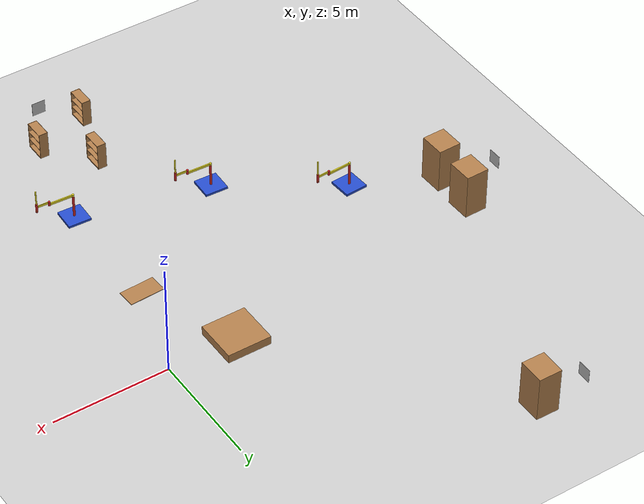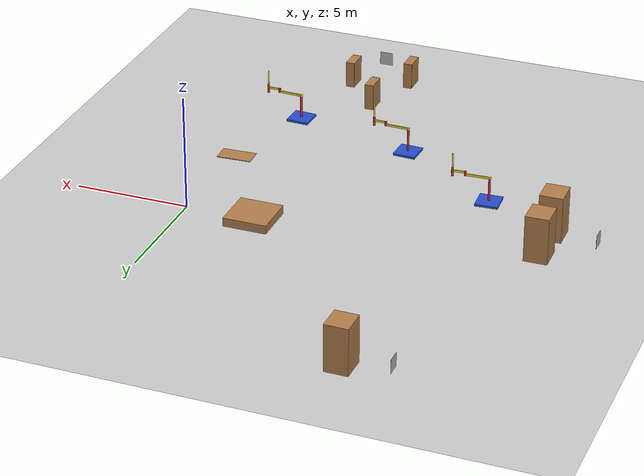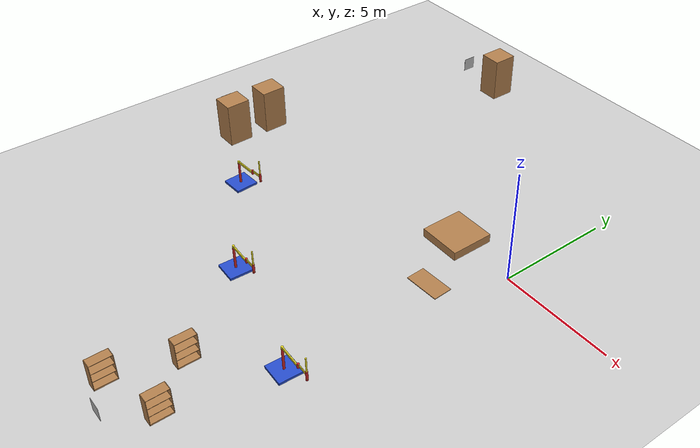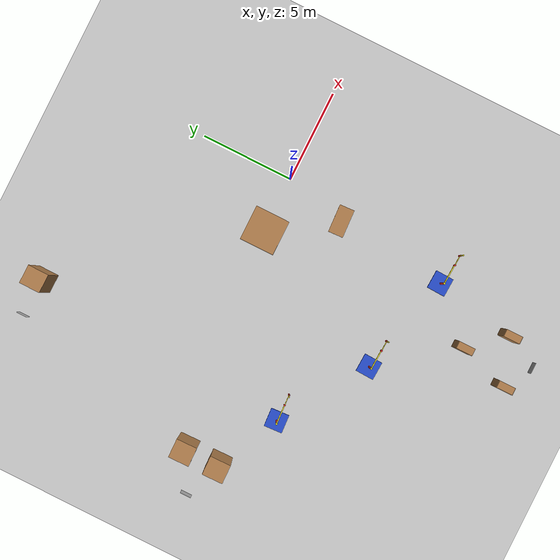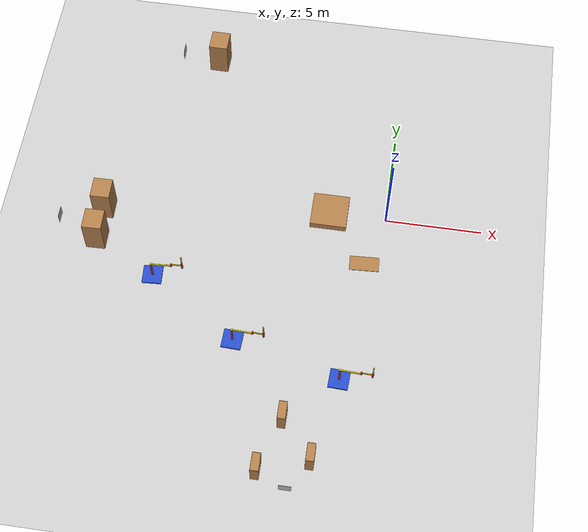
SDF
<sdf version="1.7">
 <world name="default">
  <model name="ground_plane">
   <static>1</static>
   <link name="link">
    <collision name="collision">
     <geometry><plane><normal>0 0 1</normal><size>25 25</size></plane></geometry>
     <surface><friction><ode><mu>100</mu><mu2>50</mu2></ode></friction></surface>
    </collision>
    <visual name="visual">
     <cast_shadows>0</cast_shadows>
     <geometry><plane><normal>0 0 1</normal><size>25 25</size></plane></geometry>
     <material>
      <script><uri>file://media/materials/scripts/gazebo.material</uri><name>Gazebo/Grey</name></script>
     </material>
    </visual>
   </link>
  </model>
  <model name="table">
   <static>0</static>
   <link name="link">
    <collision name="surface">
     <pose>0 0 1 0 -0 0</pose>
     <geometry><box><size>1.5 0.8 0.03</size></box></geometry>
     <surface><friction><ode><mu>0.6</mu><mu2>0.6</mu2></ode></friction></surface>
    </collision>
    <visual name="visual1">
     <pose>0 0 1 0 -0 0</pose>
     <geometry><box><size>1.5 0.8 0.03</size></box></geometry>
     <material>
      <script><uri>file://media/materials/scripts/gazebo.material</uri><name>Gazebo/Wood</name></script>
     </material>
    </visual>
    <inertial>
     <inertia><ixx>1</ixx><ixy>0</ixy><ixz>0</ixz><iyy>1</iyy><iyz>0</iyz><izz>1</izz></inertia>
     <mass>1</mass>
    </inertial>
   </link>
   <pose>-0.856033 -3.31018 -9e-06 -1e-06 1e-06 0.051046</pose>
  </model>
  <model name="unit_box_0">
   <pose>-2.99922 0.000684 0.193611 -0 -0 -0.000953</pose>
   <link name="link">
    <inertial>
     <mass>1</mass>
     <inertia>
      <ixx>0.166667</ixx>
      <ixy>0</ixy>
      <ixz>0</ixz>
      <iyy>0.166667</iyy>
      <iyz>0</iyz>
      <izz>0.166667</izz>
     </inertia>
    </inertial>
    <collision name="collision"><geometry><box><size>1.90824 1.89174 0.387223</size></box></geometry></collision>
    <visual name="visual">
     <geometry><box><size>1.90824 1.89174 0.387223</size></box></geometry>
     <material>
      <script><uri>file://media/materials/scripts/gazebo.material</uri><name>Gazebo/Wood</name></script>
     </material>
    </visual>
   </link>
   <static>0</static>
  </model>
  <model name="static_apriltag_5">
   <link name="link">
    <pose>0 0 0 -1.57 1.57 -0</pose>
    <inertial>
     <mass>0.39</mass>
     <inertia><ixx>0.00058</ixx><ixy>0</ixy><ixz>0</ixz><iyy>0.00058</iyy><iyz>0</iyz><izz>0.00019</izz></inertia>
    </inertial>
    <collision name="collision"><geometry><box><size>0.6 0.6 0.01</size></box></geometry></collision>
    <visual name="visual">
     <geometry><box><size>0.6 0.6 0.01</size></box></geometry>
     <material>
      <script>
       <uri>model://apriltag/materials/scripts</uri>
       <uri>model://apriltag/materials/textures</uri>
       <name>apriltag/Diffuse5</name>
      </script>
     </material>
    </visual>
    <gravity>0</gravity>
   </link>
   <pose>-3.19181 -15.4682 0.65103 0.000796 0.000796 1e-06</pose>
   <static>1</static>
   <pose>5.04082 3.71574 0 0 -0 0</pose>
  </model>
  <model name="static_apriltag_6">
   <link name="link">
    <pose>0 0 0 -1.57 1.57 -0</pose>
    <inertial>
     <mass>0.39</mass>
     <inertia><ixx>0.00058</ixx><ixy>0</ixy><ixz>0</ixz><iyy>0.00058</iyy><iyz>0</iyz><izz>0.00019</izz></inertia>
    </inertial>
    <collision name="collision"><geometry><box><size>0.6 0.6 0.01</size></box></geometry></collision>
    <visual name="visual">
     <geometry><box><size>0.6 0.6 0.01</size></box></geometry>
     <material>
      <script>
       <uri>model://apriltag/materials/scripts</uri>
       <uri>model://apriltag/materials/textures</uri>
       <name>apriltag/Diffuse6</name>
      </script>
     </material>
    </visual>
    <gravity>0</gravity>
   </link>
   <pose>-16.951 -2.45614 0.650971 -0.000796 0.000796 -1.57</pose>
   <static>1</static>
   <pose>3.43144 4.34187 0 0 -0 0</pose>
  </model>
  <model name="static_apriltag_7">
   <link name="link">
    <inertial>
     <mass>0.39</mass>
     <inertia><ixx>0.00058</ixx><ixy>0</ixy><ixz>0</ixz><iyy>0.00058</iyy><iyz>0</iyz><izz>0.00019</izz></inertia>
    </inertial>
    <collision name="collision"><geometry><box><size>0.6 0.6 0.01</size></box></geometry></collision>
    <visual name="visual">
     <geometry><box><size>0.6 0.6 0.01</size></box></geometry>
     <material>
      <script>
       <uri>model://apriltag/materials/scripts</uri>
       <uri>model://apriltag/materials/textures</uri>
       <name>apriltag/Diffuse7</name>
      </script>
     </material>
    </visual>
    <gravity>0</gravity>
   </link>
   <pose>-12.4494 9.17587 0.65 1.57 -0 1.57</pose>
   <static>1</static>
   <pose>3.12393 4.47604 0 0 -0 0</pose>
  </model>
  <model name="simple_arm">
   <link name="arm_base">
    <inertial>
     <pose>0 0 0.00099 0 -0 0</pose>
     <inertia><ixx>1.11</ixx><ixy>0</ixy><ixz>0</ixz><iyy>100.11</iyy><iyz>0</iyz><izz>1.01</izz></inertia>
     <mass>101</mass>
    </inertial>
    <collision name="arm_base_geom">
     <pose>0 0 0.05 0 -0 0</pose>
     <geometry><box><size>1 1 0.1</size></box></geometry>
    </collision>
    <visual name="arm_base_geom_visual">
     <pose>0 0 0.05 0 -0 0</pose>
     <geometry><box><size>1 1 0.1</size></box></geometry>
     <material>
      <script><uri>file://media/materials/scripts/gazebo.material</uri><name>Gazebo/Blue</name></script>
     </material>
    </visual>
    <collision name="arm_base_geom_arm_trunk">
     <pose>0 0 0.6 0 -0 0</pose>
     <geometry><cylinder><radius>0.05</radius><length>1</length></cylinder></geometry>
    </collision>
    <visual name="arm_base_geom_arm_trunk_visual">
     <pose>0 0 0.6 0 -0 0</pose>
     <geometry><cylinder><radius>0.05</radius><length>1</length></cylinder></geometry>
     <material>
      <script><uri>file://media/materials/scripts/gazebo.material</uri><name>Gazebo/Red</name></script>
     </material>
    </visual>
   </link>
   <link name="arm_shoulder_pan">
    <pose>0 0 1.1 0 -0 0</pose>
    <inertial>
     <pose>0.045455 0 0 0 -0 0</pose>
     <inertia><ixx>0.011</ixx><ixy>0</ixy><ixz>0</ixz><iyy>0.0225</iyy><iyz>0</iyz><izz>0.0135</izz></inertia>
     <mass>1.1</mass>
    </inertial>
    <collision name="arm_shoulder_pan_geom">
     <pose>0 0 0.05 0 -0 0</pose>
     <geometry><cylinder><radius>0.05</radius><length>0.1</length></cylinder></geometry>
    </collision>
    <visual name="arm_shoulder_pan_geom_visual">
     <pose>0 0 0.05 0 -0 0</pose>
     <geometry><cylinder><radius>0.05</radius><length>0.1</length></cylinder></geometry>
     <material>
      <script><uri>file://media/materials/scripts/gazebo.material</uri><name>Gazebo/Yellow</name></script>
     </material>
    </visual>
    <collision name="arm_shoulder_pan_geom_arm_shoulder">
     <pose>0.55 0 0.05 0 -0 0</pose>
     <geometry><box><size>1 0.05 0.1</size></box></geometry>
    </collision>
    <visual name="arm_shoulder_pan_geom_arm_shoulder_visual">
     <pose>0.55 0 0.05 0 -0 0</pose>
     <geometry><box><size>1 0.05 0.1</size></box></geometry>
     <material>
      <script><uri>file://media/materials/scripts/gazebo.material</uri><name>Gazebo/Yellow</name></script>
     </material>
    </visual>
   </link>
   <link name="arm_elbow_pan">
    <pose>1.05 0 1.1 0 -0 0</pose>
    <inertial>
     <pose>0.0875 0 0.083333 0 -0 0</pose>
     <inertia>
      <ixx>0.031</ixx>
      <ixy>0</ixy>
      <ixz>0.005</ixz>
      <iyy>0.07275</iyy>
      <iyz>0</iyz>
      <izz>0.04475</izz>
     </inertia>
     <mass>1.2</mass>
    </inertial>
    <collision name="arm_elbow_pan_geom">
     <pose>0 0 0.1 0 -0 0</pose>
     <geometry><cylinder><radius>0.05</radius><length>0.2</length></cylinder></geometry>
    </collision>
    <visual name="arm_elbow_pan_geom_visual">
     <pose>0 0 0.1 0 -0 0</pose>
     <geometry><cylinder><radius>0.05</radius><length>0.2</length></cylinder></geometry>
     <material>
      <script><uri>file://media/materials/scripts/gazebo.material</uri><name>Gazebo/Red</name></script>
     </material>
    </visual>
    <collision name="arm_elbow_pan_geom_arm_elbow">
     <pose>0.3 0 0.15 0 -0 0</pose>
     <geometry><box><size>0.5 0.03 0.1</size></box></geometry>
    </collision>
    <visual name="arm_elbow_pan_geom_arm_elbow_visual">
     <pose>0.3 0 0.15 0 -0 0</pose>
     <geometry><box><size>0.5 0.03 0.1</size></box></geometry>
     <material>
      <script><uri>file://media/materials/scripts/gazebo.material</uri><name>Gazebo/Yellow</name></script>
     </material>
    </visual>
    <collision name="arm_elbow_pan_geom_arm_wrist">
     <pose>0.55 0 0.15 0 -0 0</pose>
     <geometry><cylinder><radius>0.05</radius><length>0.3</length></cylinder></geometry>
    </collision>
    <visual name="arm_elbow_pan_geom_arm_wrist_visual">
     <pose>0.55 0 0.15 0 -0 0</pose>
     <geometry><cylinder><radius>0.05</radius><length>0.3</length></cylinder></geometry>
     <material>
      <script><uri>file://media/materials/scripts/gazebo.material</uri><name>Gazebo/Red</name></script>
     </material>
    </visual>
   </link>
   <link name="arm_wrist_lift">
    <pose>1.6 0 1.05 0 -0 0</pose>
    <inertial>
     <inertia><ixx>0.01</ixx><ixy>0</ixy><ixz>0</ixz><iyy>0.01</iyy><iyz>0</iyz><izz>0.001</izz></inertia>
     <mass>0.1</mass>
    </inertial>
    <collision name="arm_wrist_lift_geom">
     <pose>0 0 0.5 0 -0 0</pose>
     <geometry><cylinder><radius>0.03</radius><length>1</length></cylinder></geometry>
    </collision>
    <visual name="arm_wrist_lift_geom_visual">
     <pose>0 0 0.5 0 -0 0</pose>
     <geometry><cylinder><radius>0.03</radius><length>1</length></cylinder></geometry>
     <material>
      <script><uri>file://media/materials/scripts/gazebo.material</uri><name>Gazebo/Yellow</name></script>
     </material>
    </visual>
   </link>
   <link name="arm_wrist_roll">
    <pose>1.6 0 1 0 -0 0</pose>
    <inertial>
     <inertia><ixx>0.01</ixx><ixy>0</ixy><ixz>0</ixz><iyy>0.01</iyy><iyz>0</iyz><izz>0.001</izz></inertia>
     <mass>0.1</mass>
    </inertial>
    <collision name="arm_wrist_roll_geom">
     <pose>0 0 0.025 0 -0 0</pose>
     <geometry><cylinder><radius>0.05</radius><length>0.05</length></cylinder></geometry>
    </collision>
    <visual name="arm_wrist_roll_geom_visual">
     <pose>0 0 0.025 0 -0 0</pose>
     <geometry><cylinder><radius>0.05</radius><length>0.05</length></cylinder></geometry>
     <material>
      <script><uri>file://media/materials/scripts/gazebo.material</uri><name>Gazebo/Red</name></script>
     </material>
    </visual>
   </link>
   <joint name="arm_shoulder_pan_joint" type="revolute">
    <parent>arm_base</parent>
    <child>arm_shoulder_pan</child>
    <axis>
     <dynamics>
      <damping>1</damping>
      <friction>0</friction>
      <spring_reference>0</spring_reference>
      <spring_stiffness>0</spring_stiffness>
     </dynamics>
     <xyz expressed_in="__model__">0 0 1</xyz>
     <limit><lower>-1e+16</lower><upper>1e+16</upper></limit>
    </axis>
   </joint>
   <joint name="arm_elbow_pan_joint" type="revolute">
    <parent>arm_shoulder_pan</parent>
    <child>arm_elbow_pan</child>
    <axis>
     <dynamics>
      <damping>1</damping>
      <friction>0</friction>
      <spring_reference>0</spring_reference>
      <spring_stiffness>0</spring_stiffness>
     </dynamics>
     <xyz expressed_in="__model__">0 0 1</xyz>
     <limit><lower>-1e+16</lower><upper>1e+16</upper></limit>
    </axis>
   </joint>
   <joint name="arm_wrist_lift_joint" type="prismatic">
    <parent>arm_elbow_pan</parent>
    <child>arm_wrist_lift</child>
    <axis>
     <dynamics>
      <damping>1</damping>
      <friction>0</friction>
      <spring_reference>0</spring_reference>
      <spring_stiffness>0</spring_stiffness>
     </dynamics>
     <limit><lower>-0.8</lower><upper>0.1</upper></limit>
     <xyz expressed_in="__model__">0 0 1</xyz>
    </axis>
   </joint>
   <joint name="arm_wrist_roll_joint" type="revolute">
    <parent>arm_wrist_lift</parent>
    <child>arm_wrist_roll</child>
    <axis>
     <dynamics>
      <damping>1</damping>
      <friction>0</friction>
      <spring_reference>0</spring_reference>
      <spring_stiffness>0</spring_stiffness>
     </dynamics>
     <limit><lower>-2.99999</lower><upper>2.99999</upper></limit>
     <xyz expressed_in="__model__">0 0 1</xyz>
    </axis>
   </joint>
   <pose>-11.5719 -4.97908 -5.6e-05 0.000114 -2e-06 0.060272</pose>
  </model>
  <model name="simple_arm_clone">
   <link name="arm_base">
    <inertial>
     <pose>0 0 0.00099 0 -0 0</pose>
     <inertia><ixx>1.11</ixx><ixy>0</ixy><ixz>0</ixz><iyy>100.11</iyy><iyz>0</iyz><izz>1.01</izz></inertia>
     <mass>101</mass>
    </inertial>
    <collision name="arm_base_geom">
     <pose>0 0 0.05 0 -0 0</pose>
     <geometry><box><size>1 1 0.1</size></box></geometry>
    </collision>
    <visual name="arm_base_geom_visual">
     <pose>0 0 0.05 0 -0 0</pose>
     <geometry><box><size>1 1 0.1</size></box></geometry>
     <material>
      <script><uri>file://media/materials/scripts/gazebo.material</uri><name>Gazebo/Blue</name></script>
     </material>
    </visual>
    <collision name="arm_base_geom_arm_trunk">
     <pose>0 0 0.6 0 -0 0</pose>
     <geometry><cylinder><radius>0.05</radius><length>1</length></cylinder></geometry>
    </collision>
    <visual name="arm_base_geom_arm_trunk_visual">
     <pose>0 0 0.6 0 -0 0</pose>
     <geometry><cylinder><radius>0.05</radius><length>1</length></cylinder></geometry>
     <material>
      <script><uri>file://media/materials/scripts/gazebo.material</uri><name>Gazebo/Red</name></script>
     </material>
    </visual>
   </link>
   <link name="arm_shoulder_pan">
    <pose>0 0 1.1 0 -0 0</pose>
    <inertial>
     <pose>0.045455 0 0 0 -0 0</pose>
     <inertia><ixx>0.011</ixx><ixy>0</ixy><ixz>0</ixz><iyy>0.0225</iyy><iyz>0</iyz><izz>0.0135</izz></inertia>
     <mass>1.1</mass>
    </inertial>
    <collision name="arm_shoulder_pan_geom">
     <pose>0 0 0.05 0 -0 0</pose>
     <geometry><cylinder><radius>0.05</radius><length>0.1</length></cylinder></geometry>
    </collision>
    <visual name="arm_shoulder_pan_geom_visual">
     <pose>0 0 0.05 0 -0 0</pose>
     <geometry><cylinder><radius>0.05</radius><length>0.1</length></cylinder></geometry>
     <material>
      <script><uri>file://media/materials/scripts/gazebo.material</uri><name>Gazebo/Yellow</name></script>
     </material>
    </visual>
    <collision name="arm_shoulder_pan_geom_arm_shoulder">
     <pose>0.55 0 0.05 0 -0 0</pose>
     <geometry><box><size>1 0.05 0.1</size></box></geometry>
    </collision>
    <visual name="arm_shoulder_pan_geom_arm_shoulder_visual">
     <pose>0.55 0 0.05 0 -0 0</pose>
     <geometry><box><size>1 0.05 0.1</size></box></geometry>
     <material>
      <script><uri>file://media/materials/scripts/gazebo.material</uri><name>Gazebo/Yellow</name></script>
     </material>
    </visual>
   </link>
   <link name="arm_elbow_pan">
    <pose>1.05 0 1.1 0 -0 0</pose>
    <inertial>
     <pose>0.0875 0 0.083333 0 -0 0</pose>
     <inertia>
      <ixx>0.031</ixx>
      <ixy>0</ixy>
      <ixz>0.005</ixz>
      <iyy>0.07275</iyy>
      <iyz>0</iyz>
      <izz>0.04475</izz>
     </inertia>
     <mass>1.2</mass>
    </inertial>
    <collision name="arm_elbow_pan_geom">
     <pose>0 0 0.1 0 -0 0</pose>
     <geometry><cylinder><radius>0.05</radius><length>0.2</length></cylinder></geometry>
    </collision>
    <visual name="arm_elbow_pan_geom_visual">
     <pose>0 0 0.1 0 -0 0</pose>
     <geometry><cylinder><radius>0.05</radius><length>0.2</length></cylinder></geometry>
     <material>
      <script><uri>file://media/materials/scripts/gazebo.material</uri><name>Gazebo/Red</name></script>
     </material>
    </visual>
    <collision name="arm_elbow_pan_geom_arm_elbow">
     <pose>0.3 0 0.15 0 -0 0</pose>
     <geometry><box><size>0.5 0.03 0.1</size></box></geometry>
    </collision>
    <visual name="arm_elbow_pan_geom_arm_elbow_visual">
     <pose>0.3 0 0.15 0 -0 0</pose>
     <geometry><box><size>0.5 0.03 0.1</size></box></geometry>
     <material>
      <script><uri>file://media/materials/scripts/gazebo.material</uri><name>Gazebo/Yellow</name></script>
     </material>
    </visual>
    <collision name="arm_elbow_pan_geom_arm_wrist">
     <pose>0.55 0 0.15 0 -0 0</pose>
     <geometry><cylinder><radius>0.05</radius><length>0.3</length></cylinder></geometry>
    </collision>
    <visual name="arm_elbow_pan_geom_arm_wrist_visual">
     <pose>0.55 0 0.15 0 -0 0</pose>
     <geometry><cylinder><radius>0.05</radius><length>0.3</length></cylinder></geometry>
     <material>
      <script><uri>file://media/materials/scripts/gazebo.material</uri><name>Gazebo/Red</name></script>
     </material>
    </visual>
   </link>
   <link name="arm_wrist_lift">
    <pose>1.6 0 1.05 0 -0 0</pose>
    <inertial>
     <inertia><ixx>0.01</ixx><ixy>0</ixy><ixz>0</ixz><iyy>0.01</iyy><iyz>0</iyz><izz>0.001</izz></inertia>
     <mass>0.1</mass>
    </inertial>
    <collision name="arm_wrist_lift_geom">
     <pose>0 0 0.5 0 -0 0</pose>
     <geometry><cylinder><radius>0.03</radius><length>1</length></cylinder></geometry>
    </collision>
    <visual name="arm_wrist_lift_geom_visual">
     <pose>0 0 0.5 0 -0 0</pose>
     <geometry><cylinder><radius>0.03</radius><length>1</length></cylinder></geometry>
     <material>
      <script><uri>file://media/materials/scripts/gazebo.material</uri><name>Gazebo/Yellow</name></script>
     </material>
    </visual>
   </link>
   <link name="arm_wrist_roll">
    <pose>1.6 0 1 0 -0 0</pose>
    <inertial>
     <inertia><ixx>0.01</ixx><ixy>0</ixy><ixz>0</ixz><iyy>0.01</iyy><iyz>0</iyz><izz>0.001</izz></inertia>
     <mass>0.1</mass>
    </inertial>
    <collision name="arm_wrist_roll_geom">
     <pose>0 0 0.025 0 -0 0</pose>
     <geometry><cylinder><radius>0.05</radius><length>0.05</length></cylinder></geometry>
    </collision>
    <visual name="arm_wrist_roll_geom_visual">
     <pose>0 0 0.025 0 -0 0</pose>
     <geometry><cylinder><radius>0.05</radius><length>0.05</length></cylinder></geometry>
     <material>
      <script><uri>file://media/materials/scripts/gazebo.material</uri><name>Gazebo/Red</name></script>
     </material>
    </visual>
   </link>
   <joint name="arm_shoulder_pan_joint" type="revolute">
    <parent>arm_base</parent>
    <child>arm_shoulder_pan</child>
    <axis>
     <dynamics>
      <damping>1</damping>
      <friction>0</friction>
      <spring_reference>0</spring_reference>
      <spring_stiffness>0</spring_stiffness>
     </dynamics>
     <xyz expressed_in="__model__">0 0 1</xyz>
     <limit><lower>-1e+16</lower><upper>1e+16</upper></limit>
    </axis>
   </joint>
   <joint name="arm_elbow_pan_joint" type="revolute">
    <parent>arm_shoulder_pan</parent>
    <child>arm_elbow_pan</child>
    <axis>
     <dynamics>
      <damping>1</damping>
      <friction>0</friction>
      <spring_reference>0</spring_reference>
      <spring_stiffness>0</spring_stiffness>
     </dynamics>
     <xyz expressed_in="__model__">0 0 1</xyz>
     <limit><lower>-1e+16</lower><upper>1e+16</upper></limit>
    </axis>
   </joint>
   <joint name="arm_wrist_lift_joint" type="prismatic">
    <parent>arm_elbow_pan</parent>
    <child>arm_wrist_lift</child>
    <axis>
     <dynamics>
      <damping>1</damping>
      <friction>0</friction>
      <spring_reference>0</spring_reference>
      <spring_stiffness>0</spring_stiffness>
     </dynamics>
     <limit><lower>-0.8</lower><upper>0.1</upper></limit>
     <xyz expressed_in="__model__">0 0 1</xyz>
    </axis>
   </joint>
   <joint name="arm_wrist_roll_joint" type="revolute">
    <parent>arm_wrist_lift</parent>
    <child>arm_wrist_roll</child>
    <axis>
     <dynamics>
      <damping>1</damping>
      <friction>0</friction>
      <spring_reference>0</spring_reference>
      <spring_stiffness>0</spring_stiffness>
     </dynamics>
     <limit><lower>-2.99999</lower><upper>2.99999</upper></limit>
     <xyz expressed_in="__model__">0 0 1</xyz>
    </axis>
   </joint>
   <pose>-6.90545 -8.02942 -0 0 0 -0.043231</pose>
  </model>
  <model name="simple_arm_clone_0">
   <link name="arm_base">
    <inertial>
     <pose>0 0 0.00099 0 -0 0</pose>
     <inertia><ixx>1.11</ixx><ixy>0</ixy><ixz>0</ixz><iyy>100.11</iyy><iyz>0</iyz><izz>1.01</izz></inertia>
     <mass>101</mass>
    </inertial>
    <collision name="arm_base_geom">
     <pose>0 0 0.05 0 -0 0</pose>
     <geometry><box><size>1 1 0.1</size></box></geometry>
    </collision>
    <visual name="arm_base_geom_visual">
     <pose>0 0 0.05 0 -0 0</pose>
     <geometry><box><size>1 1 0.1</size></box></geometry>
     <material>
      <script><uri>file://media/materials/scripts/gazebo.material</uri><name>Gazebo/Blue</name></script>
     </material>
    </visual>
    <collision name="arm_base_geom_arm_trunk">
     <pose>0 0 0.6 0 -0 0</pose>
     <geometry><cylinder><radius>0.05</radius><length>1</length></cylinder></geometry>
    </collision>
    <visual name="arm_base_geom_arm_trunk_visual">
     <pose>0 0 0.6 0 -0 0</pose>
     <geometry><cylinder><radius>0.05</radius><length>1</length></cylinder></geometry>
     <material>
      <script><uri>file://media/materials/scripts/gazebo.material</uri><name>Gazebo/Red</name></script>
     </material>
    </visual>
   </link>
   <link name="arm_shoulder_pan">
    <pose>0 0 1.1 0 -0 0</pose>
    <inertial>
     <pose>0.045455 0 0 0 -0 0</pose>
     <inertia><ixx>0.011</ixx><ixy>0</ixy><ixz>0</ixz><iyy>0.0225</iyy><iyz>0</iyz><izz>0.0135</izz></inertia>
     <mass>1.1</mass>
    </inertial>
    <collision name="arm_shoulder_pan_geom">
     <pose>0 0 0.05 0 -0 0</pose>
     <geometry><cylinder><radius>0.05</radius><length>0.1</length></cylinder></geometry>
    </collision>
    <visual name="arm_shoulder_pan_geom_visual">
     <pose>0 0 0.05 0 -0 0</pose>
     <geometry><cylinder><radius>0.05</radius><length>0.1</length></cylinder></geometry>
     <material>
      <script><uri>file://media/materials/scripts/gazebo.material</uri><name>Gazebo/Yellow</name></script>
     </material>
    </visual>
    <collision name="arm_shoulder_pan_geom_arm_shoulder">
     <pose>0.55 0 0.05 0 -0 0</pose>
     <geometry><box><size>1 0.05 0.1</size></box></geometry>
    </collision>
    <visual name="arm_shoulder_pan_geom_arm_shoulder_visual">
     <pose>0.55 0 0.05 0 -0 0</pose>
     <geometry><box><size>1 0.05 0.1</size></box></geometry>
     <material>
      <script><uri>file://media/materials/scripts/gazebo.material</uri><name>Gazebo/Yellow</name></script>
     </material>
    </visual>
   </link>
   <link name="arm_elbow_pan">
    <pose>1.05 0 1.1 0 -0 0</pose>
    <inertial>
     <pose>0.0875 0 0.083333 0 -0 0</pose>
     <inertia>
      <ixx>0.031</ixx>
      <ixy>0</ixy>
      <ixz>0.005</ixz>
      <iyy>0.07275</iyy>
      <iyz>0</iyz>
      <izz>0.04475</izz>
     </inertia>
     <mass>1.2</mass>
    </inertial>
    <collision name="arm_elbow_pan_geom">
     <pose>0 0 0.1 0 -0 0</pose>
     <geometry><cylinder><radius>0.05</radius><length>0.2</length></cylinder></geometry>
    </collision>
    <visual name="arm_elbow_pan_geom_visual">
     <pose>0 0 0.1 0 -0 0</pose>
     <geometry><cylinder><radius>0.05</radius><length>0.2</length></cylinder></geometry>
     <material>
      <script><uri>file://media/materials/scripts/gazebo.material</uri><name>Gazebo/Red</name></script>
     </material>
    </visual>
    <collision name="arm_elbow_pan_geom_arm_elbow">
     <pose>0.3 0 0.15 0 -0 0</pose>
     <geometry><box><size>0.5 0.03 0.1</size></box></geometry>
    </collision>
    <visual name="arm_elbow_pan_geom_arm_elbow_visual">
     <pose>0.3 0 0.15 0 -0 0</pose>
     <geometry><box><size>0.5 0.03 0.1</size></box></geometry>
     <material>
      <script><uri>file://media/materials/scripts/gazebo.material</uri><name>Gazebo/Yellow</name></script>
     </material>
    </visual>
    <collision name="arm_elbow_pan_geom_arm_wrist">
     <pose>0.55 0 0.15 0 -0 0</pose>
     <geometry><cylinder><radius>0.05</radius><length>0.3</length></cylinder></geometry>
    </collision>
    <visual name="arm_elbow_pan_geom_arm_wrist_visual">
     <pose>0.55 0 0.15 0 -0 0</pose>
     <geometry><cylinder><radius>0.05</radius><length>0.3</length></cylinder></geometry>
     <material>
      <script><uri>file://media/materials/scripts/gazebo.material</uri><name>Gazebo/Red</name></script>
     </material>
    </visual>
   </link>
   <link name="arm_wrist_lift">
    <pose>1.6 0 1.05 0 -0 0</pose>
    <inertial>
     <inertia><ixx>0.01</ixx><ixy>0</ixy><ixz>0</ixz><iyy>0.01</iyy><iyz>0</iyz><izz>0.001</izz></inertia>
     <mass>0.1</mass>
    </inertial>
    <collision name="arm_wrist_lift_geom">
     <pose>0 0 0.5 0 -0 0</pose>
     <geometry><cylinder><radius>0.03</radius><length>1</length></cylinder></geometry>
    </collision>
    <visual name="arm_wrist_lift_geom_visual">
     <pose>0 0 0.5 0 -0 0</pose>
     <geometry><cylinder><radius>0.03</radius><length>1</length></cylinder></geometry>
     <material>
      <script><uri>file://media/materials/scripts/gazebo.material</uri><name>Gazebo/Yellow</name></script>
     </material>
    </visual>
   </link>
   <link name="arm_wrist_roll">
    <pose>1.6 0 1 0 -0 0</pose>
    <inertial>
     <inertia><ixx>0.01</ixx><ixy>0</ixy><ixz>0</ixz><iyy>0.01</iyy><iyz>0</iyz><izz>0.001</izz></inertia>
     <mass>0.1</mass>
    </inertial>
    <collision name="arm_wrist_roll_geom">
     <pose>0 0 0.025 0 -0 0</pose>
     <geometry><cylinder><radius>0.05</radius><length>0.05</length></cylinder></geometry>
    </collision>
    <visual name="arm_wrist_roll_geom_visual">
     <pose>0 0 0.025 0 -0 0</pose>
     <geometry><cylinder><radius>0.05</radius><length>0.05</length></cylinder></geometry>
     <material>
      <script><uri>file://media/materials/scripts/gazebo.material</uri><name>Gazebo/Red</name></script>
     </material>
    </visual>
   </link>
   <joint name="arm_shoulder_pan_joint" type="revolute">
    <parent>arm_base</parent>
    <child>arm_shoulder_pan</child>
    <axis>
     <dynamics>
      <damping>1</damping>
      <friction>0</friction>
      <spring_reference>0</spring_reference>
      <spring_stiffness>0</spring_stiffness>
     </dynamics>
     <xyz expressed_in="__model__">0 0 1</xyz>
     <limit><lower>-1e+16</lower><upper>1e+16</upper></limit>
    </axis>
   </joint>
   <joint name="arm_elbow_pan_joint" type="revolute">
    <parent>arm_shoulder_pan</parent>
    <child>arm_elbow_pan</child>
    <axis>
     <dynamics>
      <damping>1</damping>
      <friction>0</friction>
      <spring_reference>0</spring_reference>
      <spring_stiffness>0</spring_stiffness>
     </dynamics>
     <xyz expressed_in="__model__">0 0 1</xyz>
     <limit><lower>-1e+16</lower><upper>1e+16</upper></limit>
    </axis>
   </joint>
   <joint name="arm_wrist_lift_joint" type="prismatic">
    <parent>arm_elbow_pan</parent>
    <child>arm_wrist_lift</child>
    <axis>
     <dynamics>
      <damping>1</damping>
      <friction>0</friction>
      <spring_reference>0</spring_reference>
      <spring_stiffness>0</spring_stiffness>
     </dynamics>
     <limit><lower>-0.8</lower><upper>0.1</upper></limit>
     <xyz expressed_in="__model__">0 0 1</xyz>
    </axis>
   </joint>
   <joint name="arm_wrist_roll_joint" type="revolute">
    <parent>arm_wrist_lift</parent>
    <child>arm_wrist_roll</child>
    <axis>
     <dynamics>
      <damping>1</damping>
      <friction>0</friction>
      <spring_reference>0</spring_reference>
      <spring_stiffness>0</spring_stiffness>
     </dynamics>
     <limit><lower>-2.99999</lower><upper>2.99999</upper></limit>
     <xyz expressed_in="__model__">0 0 1</xyz>
    </axis>
   </joint>
   <pose>-1.36148 -9.4112 -0 0 0 -0.043231</pose>
  </model>
  <model name="bookshelf_clone">
   <static>1</static>
   <link name="link">
    <inertial><mass>1</mass></inertial>
    <collision name="back">
     <pose>0 0.005 0.6 0 -0 0</pose>
     <geometry><box><size>0.9 0.01 1.2</size></box></geometry>
    </collision>
    <visual name="visual1">
     <pose>0 0.005 0.6 0 -0 0</pose>
     <geometry><box><size>0.9 0.01 1.2</size></box></geometry>
     <material>
      <script><uri>file://media/materials/scripts/gazebo.material</uri><name>Gazebo/Wood</name></script>
     </material>
    </visual>
    <collision name="left_side">
     <pose>0.45 -0.195 0.6 0 -0 0</pose>
     <geometry><box><size>0.02 0.4 1.2</size></box></geometry>
    </collision>
    <visual name="visual2">
     <pose>0.45 -0.195 0.6 0 -0 0</pose>
     <geometry><box><size>0.02 0.4 1.2</size></box></geometry>
     <material>
      <script><uri>file://media/materials/scripts/gazebo.material</uri><name>Gazebo/Wood</name></script>
     </material>
    </visual>
    <collision name="right_side">
     <pose>-0.45 -0.195 0.6 0 -0 0</pose>
     <geometry><box><size>0.02 0.4 1.2</size></box></geometry>
    </collision>
    <visual name="visual3">
     <pose>-0.45 -0.195 0.6 0 -0 0</pose>
     <geometry><box><size>0.02 0.4 1.2</size></box></geometry>
     <material>
      <script><uri>file://media/materials/scripts/gazebo.material</uri><name>Gazebo/Wood</name></script>
     </material>
    </visual>
    <collision name="bottom">
     <pose>0 -0.195 0.03 0 -0 0</pose>
     <geometry><box><size>0.88 0.4 0.06</size></box></geometry>
    </collision>
    <visual name="visual4">
     <pose>0 -0.195 0.03 0 -0 0</pose>
     <geometry><box><size>0.88 0.4 0.06</size></box></geometry>
     <material>
      <script><uri>file://media/materials/scripts/gazebo.material</uri><name>Gazebo/Wood</name></script>
     </material>
    </visual>
    <collision name="top">
     <pose>0 -0.195 1.19 0 -0 0</pose>
     <geometry><box><size>0.88 0.4 0.02</size></box></geometry>
    </collision>
    <visual name="visual5">
     <pose>0 -0.195 1.19 0 -0 0</pose>
     <geometry><box><size>0.88 0.4 0.02</size></box></geometry>
     <material>
      <script><uri>file://media/materials/scripts/gazebo.material</uri><name>Gazebo/Wood</name></script>
     </material>
    </visual>
    <collision name="low_shelf">
     <pose>0 -0.195 0.43 0 -0 0</pose>
     <geometry><box><size>0.88 0.4 0.02</size></box></geometry>
    </collision>
    <visual name="visual6">
     <pose>0 -0.195 0.43 0 -0 0</pose>
     <geometry><box><size>0.88 0.4 0.02</size></box></geometry>
     <material>
      <script><uri>file://media/materials/scripts/gazebo.material</uri><name>Gazebo/Wood</name></script>
     </material>
    </visual>
    <collision name="high_shelf">
     <pose>0 -0.195 0.8 0 -0 0</pose>
     <geometry><box><size>0.88 0.4 0.02</size></box></geometry>
    </collision>
    <visual name="visual7">
     <pose>0 -0.195 0.8 0 -0 0</pose>
     <geometry><box><size>0.88 0.4 0.02</size></box></geometry>
     <material>
      <script><uri>file://media/materials/scripts/gazebo.material</uri><name>Gazebo/Wood</name></script>
     </material>
    </visual>
   </link>
   <pose>-4.02769 -11.8593 0 0 -0 1.57</pose>
  </model>
  <model name="bookshelf_clone_0">
   <static>1</static>
   <link name="link">
    <inertial><mass>1</mass></inertial>
    <collision name="back">
     <pose>0 0.005 0.6 0 -0 0</pose>
     <geometry><box><size>0.9 0.01 1.2</size></box></geometry>
    </collision>
    <visual name="visual1">
     <pose>0 0.005 0.6 0 -0 0</pose>
     <geometry><box><size>0.9 0.01 1.2</size></box></geometry>
     <material>
      <script><uri>file://media/materials/scripts/gazebo.material</uri><name>Gazebo/Wood</name></script>
     </material>
    </visual>
    <collision name="left_side">
     <pose>0.45 -0.195 0.6 0 -0 0</pose>
     <geometry><box><size>0.02 0.4 1.2</size></box></geometry>
    </collision>
    <visual name="visual2">
     <pose>0.45 -0.195 0.6 0 -0 0</pose>
     <geometry><box><size>0.02 0.4 1.2</size></box></geometry>
     <material>
      <script><uri>file://media/materials/scripts/gazebo.material</uri><name>Gazebo/Wood</name></script>
     </material>
    </visual>
    <collision name="right_side">
     <pose>-0.45 -0.195 0.6 0 -0 0</pose>
     <geometry><box><size>0.02 0.4 1.2</size></box></geometry>
    </collision>
    <visual name="visual3">
     <pose>-0.45 -0.195 0.6 0 -0 0</pose>
     <geometry><box><size>0.02 0.4 1.2</size></box></geometry>
     <material>
      <script><uri>file://media/materials/scripts/gazebo.material</uri><name>Gazebo/Wood</name></script>
     </material>
    </visual>
    <collision name="bottom">
     <pose>0 -0.195 0.03 0 -0 0</pose>
     <geometry><box><size>0.88 0.4 0.06</size></box></geometry>
    </collision>
    <visual name="visual4">
     <pose>0 -0.195 0.03 0 -0 0</pose>
     <geometry><box><size>0.88 0.4 0.06</size></box></geometry>
     <material>
      <script><uri>file://media/materials/scripts/gazebo.material</uri><name>Gazebo/Wood</name></script>
     </material>
    </visual>
    <collision name="top">
     <pose>0 -0.195 1.19 0 -0 0</pose>
     <geometry><box><size>0.88 0.4 0.02</size></box></geometry>
    </collision>
    <visual name="visual5">
     <pose>0 -0.195 1.19 0 -0 0</pose>
     <geometry><box><size>0.88 0.4 0.02</size></box></geometry>
     <material>
      <script><uri>file://media/materials/scripts/gazebo.material</uri><name>Gazebo/Wood</name></script>
     </material>
    </visual>
    <collision name="low_shelf">
     <pose>0 -0.195 0.43 0 -0 0</pose>
     <geometry><box><size>0.88 0.4 0.02</size></box></geometry>
    </collision>
    <visual name="visual6">
     <pose>0 -0.195 0.43 0 -0 0</pose>
     <geometry><box><size>0.88 0.4 0.02</size></box></geometry>
     <material>
      <script><uri>file://media/materials/scripts/gazebo.material</uri><name>Gazebo/Wood</name></script>
     </material>
    </visual>
    <collision name="high_shelf">
     <pose>0 -0.195 0.8 0 -0 0</pose>
     <geometry><box><size>0.88 0.4 0.02</size></box></geometry>
    </collision>
    <visual name="visual7">
     <pose>0 -0.195 0.8 0 -0 0</pose>
     <geometry><box><size>0.88 0.4 0.02</size></box></geometry>
     <material>
      <script><uri>file://media/materials/scripts/gazebo.material</uri><name>Gazebo/Wood</name></script>
     </material>
    </visual>
   </link>
   <pose>-2.40997 -13.7471 0 0 -0 1.57</pose>
  </model>
  <model name="bookshelf_clone_1">
   <static>1</static>
   <link name="link">
    <inertial><mass>1</mass></inertial>
    <collision name="back">
     <pose>0 0.005 0.6 0 -0 0</pose>
     <geometry><box><size>0.9 0.01 1.2</size></box></geometry>
    </collision>
    <visual name="visual1">
     <pose>0 0.005 0.6 0 -0 0</pose>
     <geometry><box><size>0.9 0.01 1.2</size></box></geometry>
     <material>
      <script><uri>file://media/materials/scripts/gazebo.material</uri><name>Gazebo/Wood</name></script>
     </material>
    </visual>
    <collision name="left_side">
     <pose>0.45 -0.195 0.6 0 -0 0</pose>
     <geometry><box><size>0.02 0.4 1.2</size></box></geometry>
    </collision>
    <visual name="visual2">
     <pose>0.45 -0.195 0.6 0 -0 0</pose>
     <geometry><box><size>0.02 0.4 1.2</size></box></geometry>
     <material>
      <script><uri>file://media/materials/scripts/gazebo.material</uri><name>Gazebo/Wood</name></script>
     </material>
    </visual>
    <collision name="right_side">
     <pose>-0.45 -0.195 0.6 0 -0 0</pose>
     <geometry><box><size>0.02 0.4 1.2</size></box></geometry>
    </collision>
    <visual name="visual3">
     <pose>-0.45 -0.195 0.6 0 -0 0</pose>
     <geometry><box><size>0.02 0.4 1.2</size></box></geometry>
     <material>
      <script><uri>file://media/materials/scripts/gazebo.material</uri><name>Gazebo/Wood</name></script>
     </material>
    </visual>
    <collision name="bottom">
     <pose>0 -0.195 0.03 0 -0 0</pose>
     <geometry><box><size>0.88 0.4 0.06</size></box></geometry>
    </collision>
    <visual name="visual4">
     <pose>0 -0.195 0.03 0 -0 0</pose>
     <geometry><box><size>0.88 0.4 0.06</size></box></geometry>
     <material>
      <script><uri>file://media/materials/scripts/gazebo.material</uri><name>Gazebo/Wood</name></script>
     </material>
    </visual>
    <collision name="top">
     <pose>0 -0.195 1.19 0 -0 0</pose>
     <geometry><box><size>0.88 0.4 0.02</size></box></geometry>
    </collision>
    <visual name="visual5">
     <pose>0 -0.195 1.19 0 -0 0</pose>
     <geometry><box><size>0.88 0.4 0.02</size></box></geometry>
     <material>
      <script><uri>file://media/materials/scripts/gazebo.material</uri><name>Gazebo/Wood</name></script>
     </material>
    </visual>
    <collision name="low_shelf">
     <pose>0 -0.195 0.43 0 -0 0</pose>
     <geometry><box><size>0.88 0.4 0.02</size></box></geometry>
    </collision>
    <visual name="visual6">
     <pose>0 -0.195 0.43 0 -0 0</pose>
     <geometry><box><size>0.88 0.4 0.02</size></box></geometry>
     <material>
      <script><uri>file://media/materials/scripts/gazebo.material</uri><name>Gazebo/Wood</name></script>
     </material>
    </visual>
    <collision name="high_shelf">
     <pose>0 -0.195 0.8 0 -0 0</pose>
     <geometry><box><size>0.88 0.4 0.02</size></box></geometry>
    </collision>
    <visual name="visual7">
     <pose>0 -0.195 0.8 0 -0 0</pose>
     <geometry><box><size>0.88 0.4 0.02</size></box></geometry>
     <material>
      <script><uri>file://media/materials/scripts/gazebo.material</uri><name>Gazebo/Wood</name></script>
     </material>
    </visual>
   </link>
   <pose>-4.90198 -14.579 0 0 -0 1.57</pose>
  </model>
  <model name="unit_box_clone">
   <pose>-14.8233 -1.36853 1.01795 1e-06 1e-06 0.020652</pose>
   <link name="link">
    <inertial>
     <mass>1</mass>
     <inertia>
      <ixx>0.166667</ixx>
      <ixy>0</ixy>
      <ixz>0</ixz>
      <iyy>0.166667</iyy>
      <iyz>0</iyz>
      <izz>0.166667</izz>
     </inertia>
    </inertial>
    <collision name="collision"><geometry><box><size>1 1.11313 2.03591</size></box></geometry></collision>
    <visual name="visual">
     <geometry><box><size>1 1.11313 2.03591</size></box></geometry>
     <material>
      <script><uri>file://media/materials/scripts/gazebo.material</uri><name>Gazebo/Wood</name></script>
     </material>
    </visual>
   </link>
   <static>0</static>
  </model>
  <model name="unit_box_clone_0">
   <pose>-14.8426 -3.25996 1.01795 -1e-06 -1e-06 0.02056</pose>
   <link name="link">
    <inertial>
     <mass>1</mass>
     <inertia>
      <ixx>0.166667</ixx>
      <ixy>0</ixy>
      <ixz>0</ixz>
      <iyy>0.166667</iyy>
      <iyz>0</iyz>
      <izz>0.166667</izz>
     </inertia>
    </inertial>
    <collision name="collision"><geometry><box><size>1 1.11313 2.03591</size></box></geometry></collision>
    <visual name="visual">
     <geometry><box><size>1 1.11313 2.03591</size></box></geometry>
     <material>
      <script><uri>file://media/materials/scripts/gazebo.material</uri><name>Gazebo/Wood</name></script>
     </material>
    </visual>
   </link>
   <static>0</static>
  </model>
  <model name="unit_box_clone_1">
   <pose>-10.3955 9.14309 1.01795 -4e-06 -2e-06 -0.014253</pose>
   <link name="link">
    <inertial>
     <mass>1</mass>
     <inertia>
      <ixx>0.166667</ixx>
      <ixy>0</ixy>
      <ixz>0</ixz>
      <iyy>0.166667</iyy>
      <iyz>0</iyz>
      <izz>0.166667</izz>
     </inertia>
    </inertial>
    <collision name="collision"><geometry><box><size>1 1.11313 2.03591</size></box></geometry></collision>
    <visual name="visual">
     <geometry><box><size>1 1.11313 2.03591</size></box></geometry>
     <material>
      <script><uri>file://media/materials/scripts/gazebo.material</uri><name>Gazebo/Wood</name></script>
     </material>
    </visual>
   </link>
   <static>0</static>
  </model>
 </world>
</sdf>
